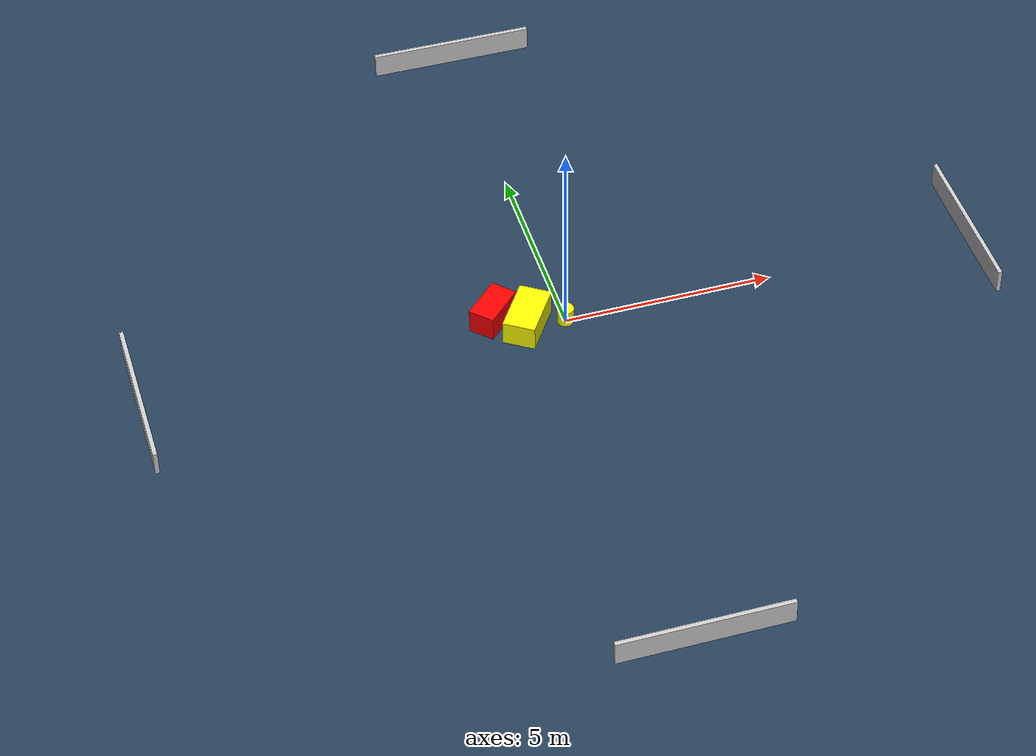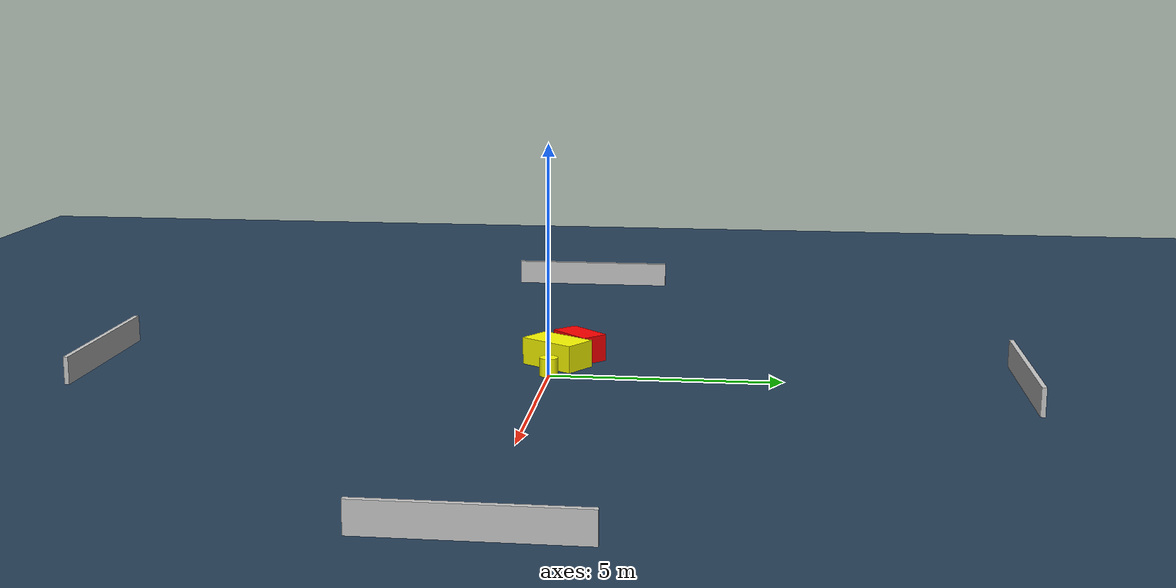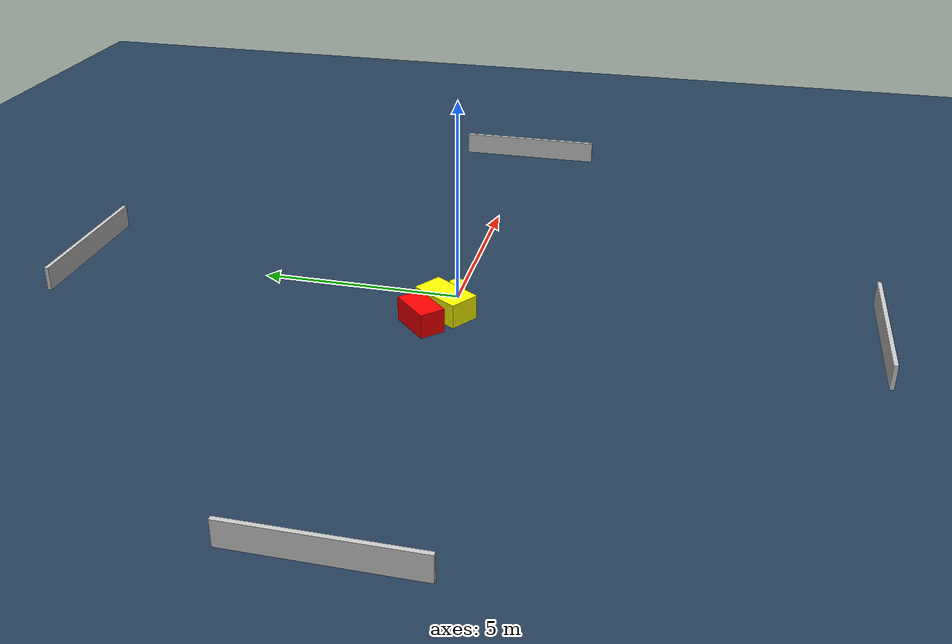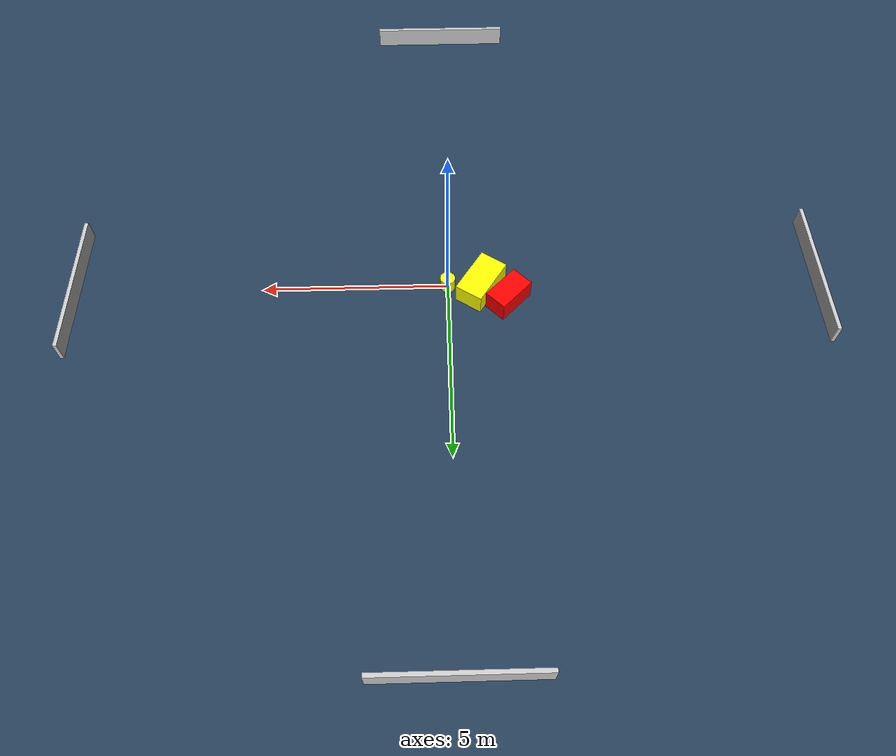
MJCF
<?xml version="1.0" ?>
<mujoco model="generated_environment">
  <option timestep="0.01" integrator="RK4" cone="elliptic"/>
  <default>
    <geom density="1"/>
  </default>
  <asset>
    <texture builtin="gradient" height="3072" name="skybox" rgb1="0.3 0.5 0.7" rgb2="0 0 0" type="skybox" width="512"/>
    <texture builtin="checker" height="300" name="groundplane" rgb1="0.2 0.3 0.4" rgb2="0.1 0.2 0.3" type="2d" width="300"/>
    <material name="groundplane" reflectance="0.2" texrepeat="5 5" texture="groundplane"/>
  </asset>
  <worldbody>
    <light dir="0 0 -1" directional="true" pos="0 0 1.5"/>
    <geom condim="3" friction="0.5 0.005 0.001" material="groundplane" name="floor" pos="0 0 0" size="0 0 0.05" type="plane"/>
    <body name="walls">
      <geom name="wall_1" condim="4" pos="-10.0 0.0 0.3" rgba="0.800000011920929 0.800000011920929 0.800000011920929 1.0" size="0.05 2.0 0.3" type="box"/>
      <geom name="wall_2" condim="4" pos="10.0 0.0 0.3" rgba="0.800000011920929 0.800000011920929 0.800000011920929 1.0" size="0.05 2.0 0.3" type="box"/>
      <geom name="wall_3" condim="4" pos="0.0 -10.0 0.3" rgba="0.800000011920929 0.800000011920929 0.800000011920929 1.0" size="2.0 0.05 0.3" type="box"/>
      <geom name="wall_4" condim="4" pos="0.0 10.0 0.3" rgba="0.800000011920929 0.800000011920929 0.800000011920929 1.0" size="2.0 0.05 0.3" type="box"/>
    </body>
    <body name="robot">
      <joint name="joint_x" type="slide" pos="0 0 0" axis="1 0 0"/>
      <joint name="joint_y" type="slide" pos="0 0 0" axis="0 1 0"/>
      <geom name="robot" type="cylinder" pos="0.0 0.0 0.2" size="0.2 0.2 0.0" mass="5.0" friction="1.0 0.005 0.0001" condim="4" rgba="1.0 1.0 0.0 1.0"/>
    </body>
    <body name="obstacle_1_movable">
      <geom name="obstacle_1_movable" condim="4" pos="-0.8986847945855568 0.07915134404542987 0.3" euler="0 0 56.472205809641984" friction="0.0 0.005 0.001" rgba="1.0 1.0 0.0 1.0" size="0.668857078489332 0.3856233597299893 0.3" type="box" mass="0.1"/>
      <joint type="free"/>
    </body>
    <body name="obstacle_2_static">
      <geom name="obstacle_2_static" condim="4" pos="-1.6083348417242476 0.501839434672829 0.3" euler="0 0 224.7621760207176" friction="0.0 0.005 0.001" rgba="1.0 0.0 0.0 1.0" size="0.5470330009161302 0.3156399156119031 0.3" type="box"/>
    </body>
  </worldbody>
  <actuator>
    <motor name="actuator_x" joint="joint_x" gear="1" ctrlrange="-1 1"/>
    <motor name="actuator_y" joint="joint_y" gear="1" ctrlrange="-1 1"/>
  </actuator>
</mujoco>
